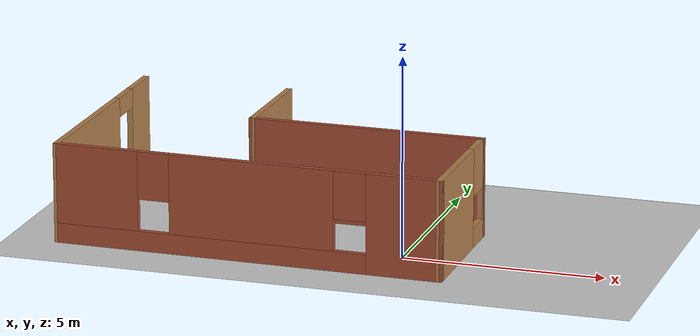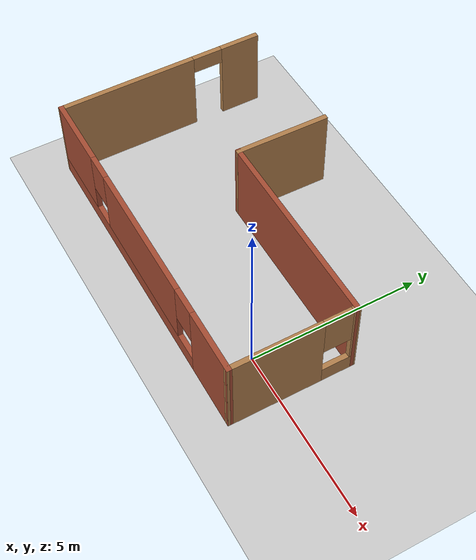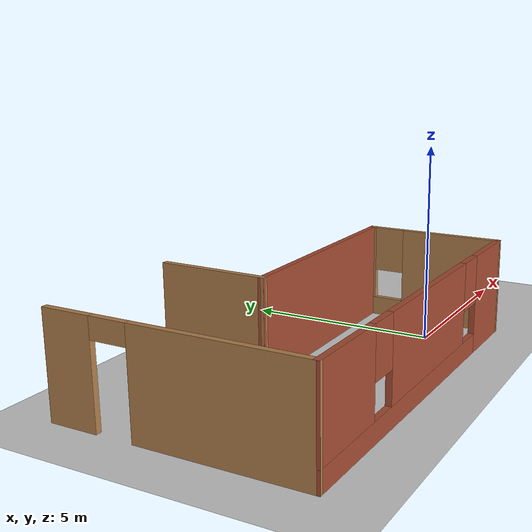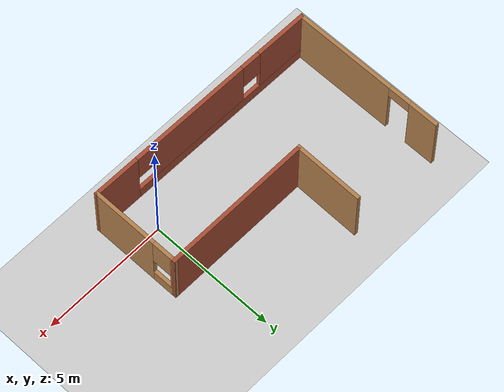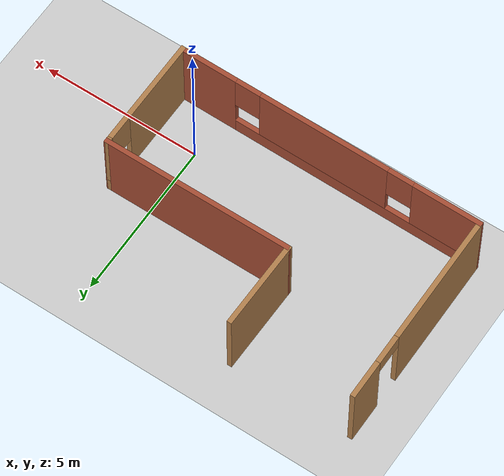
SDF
<sdf version="1.7">
 <world name="default">
  <light name="sun" type="directional">
   <pose>0 0 10 0 -0 0</pose>
   <diffuse>0.8 0.8 0.8 1</diffuse>
   <specular>0.2 0.2 0.2 1</specular>
   <attenuation>
    <range>1000</range>
    <constant>0.9</constant>
    <linear>0.01</linear>
    <quadratic>0.001</quadratic>
   </attenuation>
   <direction>-0.5 0.1 -0.9</direction>
   <spot><inner_angle>0</inner_angle><outer_angle>0</outer_angle><falloff>0</falloff></spot>
  </light>
  <model name="ground_plane">
   <static>1</static>
   <link name="link">
    <collision name="collision">
     <geometry><plane><normal>0 0 1</normal><size>100 100</size></plane></geometry>
     <surface>
      <contact><collide_bitmask>65535</collide_bitmask></contact>
      <friction><ode><mu>100</mu><mu2>50</mu2></ode></friction>
     </surface>
    </collision>
    <visual name="visual">
     <cast_shadows>0</cast_shadows>
     <geometry><plane><normal>0 0 1</normal><size>100 100</size></plane></geometry>
     <material>
      <script><uri>file://media/materials/scripts/gazebo.material</uri><name>Gazebo/Grey</name></script>
     </material>
    </visual>
   </link>
  </model>
  <plugin name="set_entity_state" filename="libgazebo_ros_set_entity_state.so"/>
  <plugin name="gazebo_link_attacher" filename="libgazebo_link_attacher.so"/>
  <plugin name="gazebo_ros_state" filename="libgazebo_ros_state.so"/>
  <gravity>0 0 -9.8</gravity>
  <magnetic_field>6e-06 2.3e-05 -4.2e-05</magnetic_field>
  <atmosphere type="adiabatic"/>
  <physics type="ode">
   <max_step_size>0.001</max_step_size>
   <real_time_factor>1</real_time_factor>
   <real_time_update_rate>1000</real_time_update_rate>
  </physics>
  <scene><ambient>0.4 0.4 0.4 1</ambient><background>0.7 0.7 0.7 1</background><shadows>1</shadows></scene>
  <audio><device>default</device></audio>
  <spherical_coordinates>
   <surface_model>EARTH_WGS84</surface_model>
   <latitude_deg>0</latitude_deg>
   <longitude_deg>0</longitude_deg>
   <elevation>0</elevation>
   <heading_deg>0</heading_deg>
  </spherical_coordinates>
  <model name="Untitled">
   <pose>-3.48174 1.70117 0 0 -0 0</pose>
   <link name="Wall_11">
    <pose>-4.82484 0.039069 0 0 -0 1.5708</pose>
    <visual name="Wall_11_Visual_0">
     <pose>-1.05137 0 1.25 0 -0 0</pose>
     <geometry><box><size>4.14726 0.15 2.5</size></box></geometry>
     <material>
      <script><uri>file://media/materials/scripts/gazebo.material</uri><name>Gazebo/Wood</name></script>
      <ambient>0.996078 0.47451 0.0196078 1</ambient>
     </material>
     <meta><layer>0</layer></meta>
    </visual>
    <collision name="Wall_11_Collision_0">
     <geometry><box><size>4.14726 0.15 2.5</size></box></geometry>
     <pose>-1.05137 0 1.25 0 -0 0</pose>
    </collision>
    <visual name="Wall_11_Visual_1">
     <pose>2.52363 0 1.25 0 -0 0</pose>
     <geometry><box><size>1.20274 0.15 2.5</size></box></geometry>
     <material>
      <script><uri>file://media/materials/scripts/gazebo.material</uri><name>Gazebo/Wood</name></script>
      <ambient>0.996078 0.47451 0.0196078 1</ambient>
     </material>
     <meta><layer>0</layer></meta>
    </visual>
    <collision name="Wall_11_Collision_1">
     <geometry><box><size>1.20274 0.15 2.5</size></box></geometry>
     <pose>2.52363 0 1.25 0 -0 0</pose>
    </collision>
    <visual name="Wall_11_Visual_2">
     <pose>1.47226 0 2.25 0 -0 0</pose>
     <geometry><box><size>0.9 0.15 0.5</size></box></geometry>
     <material>
      <script><uri>file://media/materials/scripts/gazebo.material</uri><name>Gazebo/Wood</name></script>
      <ambient>0.996078 0.47451 0.0196078 1</ambient>
     </material>
     <meta><layer>0</layer></meta>
    </visual>
    <collision name="Wall_11_Collision_2">
     <geometry><box><size>0.9 0.15 0.5</size></box></geometry>
     <pose>1.47226 0 2.25 0 -0 0</pose>
    </collision>
   </link>
   <link name="Wall_2">
    <pose>4.82513 -1.32517 0 0 -0 1.57058</pose>
    <visual name="Wall_2_Visual_0">
     <pose>-0.504734 0 1.25 0 -0 0</pose>
     <geometry><box><size>2.69053 0.15 2.5</size></box></geometry>
     <material>
      <script><uri>file://media/materials/scripts/gazebo.material</uri><name>Gazebo/Wood</name></script>
      <ambient>0.996078 0.47451 0.0196078 1</ambient>
     </material>
     <meta><layer>0</layer></meta>
    </visual>
    <collision name="Wall_2_Collision_0">
     <geometry><box><size>2.69053 0.15 2.5</size></box></geometry>
     <pose>-0.504734 0 1.25 0 -0 0</pose>
    </collision>
    <visual name="Wall_2_Visual_1">
     <pose>1.34527 0 0.25 0 -0 0</pose>
     <geometry><box><size>1.00947 0.15 0.5</size></box></geometry>
     <material>
      <script><uri>file://media/materials/scripts/gazebo.material</uri><name>Gazebo/Wood</name></script>
      <ambient>0.996078 0.47451 0.0196078 1</ambient>
     </material>
     <meta><layer>0</layer></meta>
    </visual>
    <collision name="Wall_2_Collision_1">
     <geometry><box><size>1.00947 0.15 0.5</size></box></geometry>
     <pose>1.34527 0 0.25 0 -0 0</pose>
    </collision>
    <visual name="Wall_2_Visual_2">
     <pose>1.74527 0 1.5 0 -0 0</pose>
     <geometry><box><size>0.209467 0.15 2</size></box></geometry>
     <material>
      <script><uri>file://media/materials/scripts/gazebo.material</uri><name>Gazebo/Wood</name></script>
      <ambient>0.996078 0.47451 0.0196078 1</ambient>
     </material>
     <meta><layer>0</layer></meta>
    </visual>
    <collision name="Wall_2_Collision_2">
     <geometry><box><size>0.209467 0.15 2</size></box></geometry>
     <pose>1.74527 0 1.5 0 -0 0</pose>
    </collision>
    <visual name="Wall_2_Visual_3">
     <pose>1.24053 0 1.9 0 -0 0</pose>
     <geometry><box><size>0.8 0.15 1.2</size></box></geometry>
     <material>
      <script><uri>file://media/materials/scripts/gazebo.material</uri><name>Gazebo/Wood</name></script>
      <ambient>0.996078 0.47451 0.0196078 1</ambient>
     </material>
     <meta><layer>0</layer></meta>
    </visual>
    <collision name="Wall_2_Collision_3">
     <geometry><box><size>0.8 0.15 1.2</size></box></geometry>
     <pose>1.24053 0 1.9 0 -0 0</pose>
    </collision>
   </link>
   <link name="Wall_4">
    <pose>-5.1e-05 -3.05555 0 0 -0 3.13234</pose>
    <visual name="Wall_4_Visual_0">
     <pose>-3.95787 0 1.25 0 -0 0</pose>
     <geometry><box><size>1.88426 0.15 2.5</size></box></geometry>
     <material>
      <script><uri>file://media/materials/scripts/gazebo.material</uri><name>Gazebo/Bricks</name></script>
      <ambient>1 1 1 1</ambient>
     </material>
     <meta><layer>0</layer></meta>
    </visual>
    <collision name="Wall_4_Collision_0">
     <geometry><box><size>1.88426 0.15 2.5</size></box></geometry>
     <pose>-3.95787 0 1.25 0 -0 0</pose>
    </collision>
    <visual name="Wall_4_Visual_1">
     <pose>0.942127 0 0.25 0 -0 0</pose>
     <geometry><box><size>7.91575 0.15 0.5</size></box></geometry>
     <material>
      <script><uri>file://media/materials/scripts/gazebo.material</uri><name>Gazebo/Bricks</name></script>
      <ambient>1 1 1 1</ambient>
     </material>
     <meta><layer>0</layer></meta>
    </visual>
    <collision name="Wall_4_Collision_1">
     <geometry><box><size>7.91575 0.15 0.5</size></box></geometry>
     <pose>0.942127 0 0.25 0 -0 0</pose>
    </collision>
    <visual name="Wall_4_Visual_2">
     <pose>-0.142156 0 1.5 0 -0 0</pose>
     <geometry><box><size>4.14718 0.15 2</size></box></geometry>
     <material>
      <script><uri>file://media/materials/scripts/gazebo.material</uri><name>Gazebo/Bricks</name></script>
      <ambient>1 1 1 1</ambient>
     </material>
     <meta><layer>0</layer></meta>
    </visual>
    <collision name="Wall_4_Collision_2">
     <geometry><box><size>4.14718 0.15 2</size></box></geometry>
     <pose>-0.142156 0 1.5 0 -0 0</pose>
    </collision>
    <visual name="Wall_4_Visual_3">
     <pose>3.81572 0 1.5 0 -0 0</pose>
     <geometry><box><size>2.16857 0.15 2</size></box></geometry>
     <material>
      <script><uri>file://media/materials/scripts/gazebo.material</uri><name>Gazebo/Bricks</name></script>
      <ambient>1 1 1 1</ambient>
     </material>
     <meta><layer>0</layer></meta>
    </visual>
    <collision name="Wall_4_Collision_3">
     <geometry><box><size>2.16857 0.15 2</size></box></geometry>
     <pose>3.81572 0 1.5 0 -0 0</pose>
    </collision>
    <visual name="Wall_4_Visual_4">
     <pose>-2.61574 0 1.9 0 -0 0</pose>
     <geometry><box><size>0.8 0.15 1.2</size></box></geometry>
     <material>
      <script><uri>file://media/materials/scripts/gazebo.material</uri><name>Gazebo/Bricks</name></script>
      <ambient>1 1 1 1</ambient>
     </material>
     <meta><layer>0</layer></meta>
    </visual>
    <collision name="Wall_4_Collision_4">
     <geometry><box><size>0.8 0.15 1.2</size></box></geometry>
     <pose>-2.61574 0 1.9 0 -0 0</pose>
    </collision>
    <visual name="Wall_4_Visual_5">
     <pose>2.33143 0 1.9 0 -0 0</pose>
     <geometry><box><size>0.8 0.15 1.2</size></box></geometry>
     <material>
      <script><uri>file://media/materials/scripts/gazebo.material</uri><name>Gazebo/Bricks</name></script>
      <ambient>1 1 1 1</ambient>
     </material>
     <meta><layer>0</layer></meta>
    </visual>
    <collision name="Wall_4_Collision_5">
     <geometry><box><size>0.8 0.15 1.2</size></box></geometry>
     <pose>2.33143 0 1.9 0 -0 0</pose>
    </collision>
   </link>
   <link name="Wall_6">
    <collision name="Wall_6_Collision">
     <geometry><box><size>6 0.15 2.5</size></box></geometry>
     <pose>0 0 1.25 0 -0 0</pose>
    </collision>
    <visual name="Wall_6_Visual">
     <pose>0 0 1.25 0 -0 0</pose>
     <geometry><box><size>6 0.15 2.5</size></box></geometry>
     <material>
      <script><uri>file://media/materials/scripts/gazebo.material</uri><name>Gazebo/Bricks</name></script>
      <ambient>1 1 1 1</ambient>
     </material>
     <meta><layer>0</layer></meta>
    </visual>
    <pose>1.90052 0.449832 0 0 -0 3.14159</pose>
   </link>
   <link name="Wall_9">
    <collision name="Wall_9_Collision">
     <geometry><box><size>2.80023 0.15 2.5</size></box></geometry>
     <pose>0 0 1.25 0 -0 0</pose>
    </collision>
    <visual name="Wall_9_Visual">
     <pose>0 0 1.25 0 -0 0</pose>
     <geometry><box><size>2.80023 0.15 2.5</size></box></geometry>
     <material>
      <script><uri>file://media/materials/scripts/gazebo.material</uri><name>Gazebo/Wood</name></script>
      <ambient>0.996078 0.47451 0.0196078 1</ambient>
     </material>
     <meta><layer>0</layer></meta>
    </visual>
    <pose>-1.00552 1.77481 0 0 -0 1.55648</pose>
   </link>
   <static>1</static>
  </model>
 </world>
</sdf>
